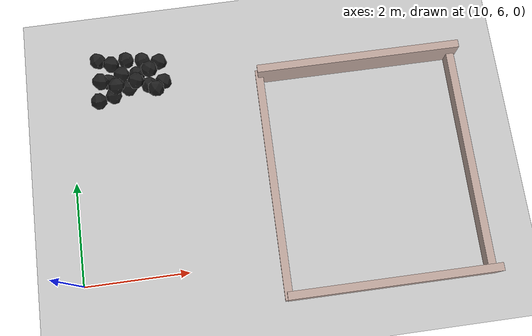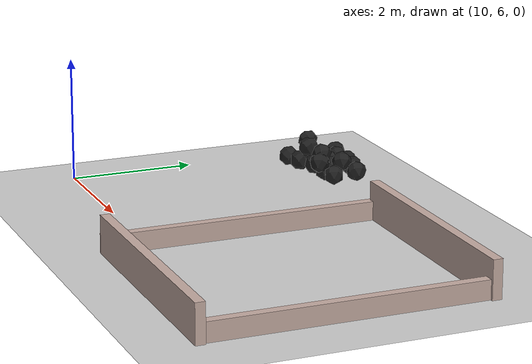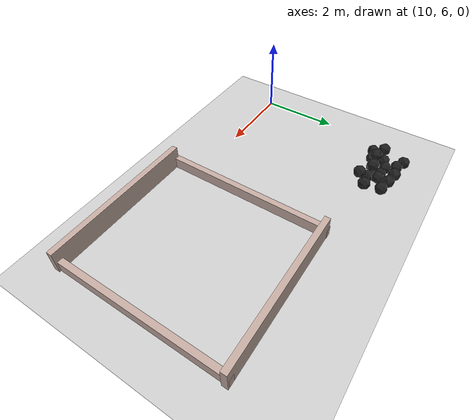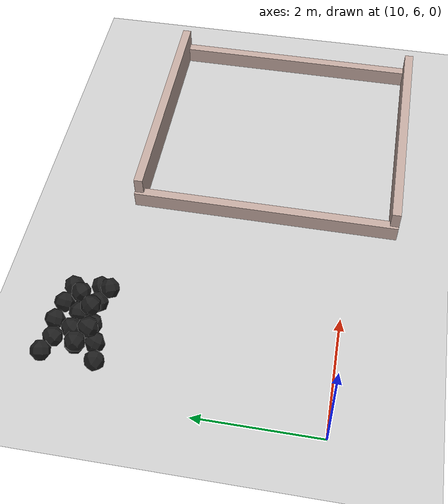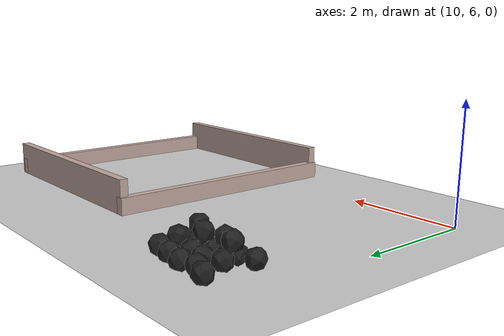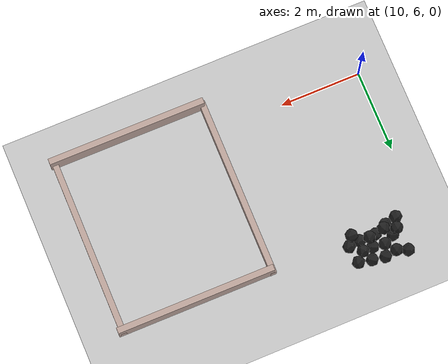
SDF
<sdf version="1.7">
 <world name="default">
  <model name="ground_plane">
   <static>1</static>
   <link name="link">
    <collision name="collision">
     <geometry><plane><normal>0 0 1</normal><size>100 100</size></plane></geometry>
     <surface><friction><ode><mu>100</mu><mu2>50</mu2></ode></friction></surface>
    </collision>
    <visual name="visual">
     <cast_shadows>0</cast_shadows>
     <geometry><plane><normal>0 0 1</normal><size>100 100</size></plane></geometry>
     <material>
      <script><uri>file://media/materials/scripts/gazebo.material</uri><name>Gazebo/Grey</name></script>
     </material>
    </visual>
   </link>
  </model>
  <model name="haoduomiantiaa_18">
   <link name="link_0">
    <inertial>
     <mass>0.2</mass>
     <inertia>
      <ixx>0.166667</ixx>
      <ixy>0</ixy>
      <ixz>0</ixz>
      <iyy>0.166667</iyy>
      <iyz>0</iyz>
      <izz>0.166667</izz>
     </inertia>
    </inertial>
    <visual name="visual">
     <geometry>
      <mesh>
       <uri>/home/lihaoyang/catkin_ws/src/pudong_gazebo/world/stl/haoduomianti.stl</uri>
       <scale>1 1 1</scale>
      </mesh>
     </geometry>
     <material>
      <lighting>1</lighting>
      <script><uri>file://media/materials/scripts/gazebo.material</uri><name>Gazebo/Black</name></script>
      <shader type="pixel"><normal_map>__default__</normal_map></shader>
      <ambient>0.3 0.3 0.3 1</ambient>
      <diffuse>0.7 0.7 0.7 1</diffuse>
      <specular>0.01 0.01 0.01 1</specular>
      <emissive>0 0 0 1</emissive>
     </material>
    </visual>
    <collision name="collision">
     <geometry>
      <mesh>
       <uri>/home/lihaoyang/catkin_ws/src/pudong_gazebo/world/stl/haoduomianti.stl</uri>
       <scale>1 1 1</scale>
      </mesh>
     </geometry>
     <surface>
      <friction>
       <ode><mu>1</mu><mu2>1</mu2><fdir1>0 0 0</fdir1><slip1>0</slip1><slip2>0</slip2></ode>
       <torsional>
        <coefficient>1</coefficient>
        <patch_radius>0</patch_radius>
        <surface_radius>0</surface_radius>
        <use_patch_radius>1</use_patch_radius>
        <ode><slip>0</slip></ode>
       </torsional>
      </friction>
      <bounce><restitution_coefficient>0</restitution_coefficient><threshold>1e+06</threshold></bounce>
      <contact>
       <collide_without_contact>0</collide_without_contact>
       <collide_without_contact_bitmask>1</collide_without_contact_bitmask>
       <collide_bitmask>1</collide_bitmask>
       <ode>
        <soft_cfm>0</soft_cfm>
        <soft_erp>0.2</soft_erp>
        <kp>1e+13</kp>
        <kd>1</kd>
        <max_vel>0.01</max_vel>
        <min_depth>0</min_depth>
       </ode>
       <bullet>
        <split_impulse>1</split_impulse>
        <split_impulse_penetration_threshold>-0.01</split_impulse_penetration_threshold>
        <soft_cfm>0</soft_cfm>
        <soft_erp>0.2</soft_erp>
        <kp>1e+13</kp>
        <kd>1</kd>
       </bullet>
      </contact>
     </surface>
    </collision>
   </link>
   <static>0</static>
   <pose>11.3788 9.80363 0.112676 0.805186 -0.555993 1.0651</pose>
  </model>
  <model name="haoduomiantiaa_20">
   <link name="link_0">
    <inertial>
     <mass>0.2</mass>
     <inertia>
      <ixx>0.166667</ixx>
      <ixy>0</ixy>
      <ixz>0</ixz>
      <iyy>0.166667</iyy>
      <iyz>0</iyz>
      <izz>0.166667</izz>
     </inertia>
    </inertial>
    <visual name="visual">
     <geometry>
      <mesh>
       <uri>/home/lihaoyang/catkin_ws/src/pudong_gazebo/world/stl/haoduomianti.stl</uri>
       <scale>1 1 1</scale>
      </mesh>
     </geometry>
     <material>
      <lighting>1</lighting>
      <script><uri>file://media/materials/scripts/gazebo.material</uri><name>Gazebo/Black</name></script>
      <shader type="pixel"><normal_map>__default__</normal_map></shader>
      <ambient>0.3 0.3 0.3 1</ambient>
      <diffuse>0.7 0.7 0.7 1</diffuse>
      <specular>0.01 0.01 0.01 1</specular>
      <emissive>0 0 0 1</emissive>
     </material>
    </visual>
    <collision name="collision">
     <geometry>
      <mesh>
       <uri>/home/lihaoyang/catkin_ws/src/pudong_gazebo/world/stl/haoduomianti.stl</uri>
       <scale>1 1 1</scale>
      </mesh>
     </geometry>
     <surface>
      <friction>
       <ode><mu>1</mu><mu2>1</mu2><fdir1>0 0 0</fdir1><slip1>0</slip1><slip2>0</slip2></ode>
       <torsional>
        <coefficient>1</coefficient>
        <patch_radius>0</patch_radius>
        <surface_radius>0</surface_radius>
        <use_patch_radius>1</use_patch_radius>
        <ode><slip>0</slip></ode>
       </torsional>
      </friction>
      <bounce><restitution_coefficient>0</restitution_coefficient><threshold>1e+06</threshold></bounce>
      <contact>
       <collide_without_contact>0</collide_without_contact>
       <collide_without_contact_bitmask>1</collide_without_contact_bitmask>
       <collide_bitmask>1</collide_bitmask>
       <ode>
        <soft_cfm>0</soft_cfm>
        <soft_erp>0.2</soft_erp>
        <kp>1e+13</kp>
        <kd>1</kd>
        <max_vel>0.01</max_vel>
        <min_depth>0</min_depth>
       </ode>
       <bullet>
        <split_impulse>1</split_impulse>
        <split_impulse_penetration_threshold>-0.01</split_impulse_penetration_threshold>
        <soft_cfm>0</soft_cfm>
        <soft_erp>0.2</soft_erp>
        <kp>1e+13</kp>
        <kd>1</kd>
       </bullet>
      </contact>
     </surface>
    </collision>
   </link>
   <static>0</static>
   <pose>11.6065 10.0135 0.030702 0.501601 -0.690657 -1.03502</pose>
  </model>
  <model name="haoduomiantiaa_39">
   <link name="link_0">
    <inertial>
     <mass>0.2</mass>
     <inertia>
      <ixx>0.166667</ixx>
      <ixy>0</ixy>
      <ixz>0</ixz>
      <iyy>0.166667</iyy>
      <iyz>0</iyz>
      <izz>0.166667</izz>
     </inertia>
    </inertial>
    <visual name="visual">
     <geometry>
      <mesh>
       <uri>/home/lihaoyang/catkin_ws/src/pudong_gazebo/world/stl/haoduomianti.stl</uri>
       <scale>1 1 1</scale>
      </mesh>
     </geometry>
     <material>
      <lighting>1</lighting>
      <script><uri>file://media/materials/scripts/gazebo.material</uri><name>Gazebo/Black</name></script>
      <shader type="pixel"><normal_map>__default__</normal_map></shader>
      <ambient>0.3 0.3 0.3 1</ambient>
      <diffuse>0.7 0.7 0.7 1</diffuse>
      <specular>0.01 0.01 0.01 1</specular>
      <emissive>0 0 0 1</emissive>
     </material>
    </visual>
    <collision name="collision">
     <geometry>
      <mesh>
       <uri>/home/lihaoyang/catkin_ws/src/pudong_gazebo/world/stl/haoduomianti.stl</uri>
       <scale>1 1 1</scale>
      </mesh>
     </geometry>
     <surface>
      <friction>
       <ode><mu>1</mu><mu2>1</mu2><fdir1>0 0 0</fdir1><slip1>0</slip1><slip2>0</slip2></ode>
       <torsional>
        <coefficient>1</coefficient>
        <patch_radius>0</patch_radius>
        <surface_radius>0</surface_radius>
        <use_patch_radius>1</use_patch_radius>
        <ode><slip>0</slip></ode>
       </torsional>
      </friction>
      <bounce><restitution_coefficient>0</restitution_coefficient><threshold>1e+06</threshold></bounce>
      <contact>
       <collide_without_contact>0</collide_without_contact>
       <collide_without_contact_bitmask>1</collide_without_contact_bitmask>
       <collide_bitmask>1</collide_bitmask>
       <ode>
        <soft_cfm>0</soft_cfm>
        <soft_erp>0.2</soft_erp>
        <kp>1e+13</kp>
        <kd>1</kd>
        <max_vel>0.01</max_vel>
        <min_depth>0</min_depth>
       </ode>
       <bullet>
        <split_impulse>1</split_impulse>
        <split_impulse_penetration_threshold>-0.01</split_impulse_penetration_threshold>
        <soft_cfm>0</soft_cfm>
        <soft_erp>0.2</soft_erp>
        <kp>1e+13</kp>
        <kd>1</kd>
       </bullet>
      </contact>
     </surface>
    </collision>
   </link>
   <static>0</static>
   <pose>11.082 10.0686 -0.115051 0.78511 -0.615438 -0.929755</pose>
  </model>
  <model name="haoduomiantiaa_40">
   <link name="link_0">
    <inertial>
     <mass>0.2</mass>
     <inertia>
      <ixx>0.166667</ixx>
      <ixy>0</ixy>
      <ixz>0</ixz>
      <iyy>0.166667</iyy>
      <iyz>0</iyz>
      <izz>0.166667</izz>
     </inertia>
    </inertial>
    <visual name="visual">
     <geometry>
      <mesh>
       <uri>/home/lihaoyang/catkin_ws/src/pudong_gazebo/world/stl/haoduomianti.stl</uri>
       <scale>1 1 1</scale>
      </mesh>
     </geometry>
     <material>
      <lighting>1</lighting>
      <script><uri>file://media/materials/scripts/gazebo.material</uri><name>Gazebo/Black</name></script>
      <shader type="pixel"><normal_map>__default__</normal_map></shader>
      <ambient>0.3 0.3 0.3 1</ambient>
      <diffuse>0.7 0.7 0.7 1</diffuse>
      <specular>0.01 0.01 0.01 1</specular>
      <emissive>0 0 0 1</emissive>
     </material>
    </visual>
    <collision name="collision">
     <geometry>
      <mesh>
       <uri>/home/lihaoyang/catkin_ws/src/pudong_gazebo/world/stl/haoduomianti.stl</uri>
       <scale>1 1 1</scale>
      </mesh>
     </geometry>
     <surface>
      <friction>
       <ode><mu>1</mu><mu2>1</mu2><fdir1>0 0 0</fdir1><slip1>0</slip1><slip2>0</slip2></ode>
       <torsional>
        <coefficient>1</coefficient>
        <patch_radius>0</patch_radius>
        <surface_radius>0</surface_radius>
        <use_patch_radius>1</use_patch_radius>
        <ode><slip>0</slip></ode>
       </torsional>
      </friction>
      <bounce><restitution_coefficient>0</restitution_coefficient><threshold>1e+06</threshold></bounce>
      <contact>
       <collide_without_contact>0</collide_without_contact>
       <collide_without_contact_bitmask>1</collide_without_contact_bitmask>
       <collide_bitmask>1</collide_bitmask>
       <ode>
        <soft_cfm>0</soft_cfm>
        <soft_erp>0.2</soft_erp>
        <kp>1e+13</kp>
        <kd>1</kd>
        <max_vel>0.01</max_vel>
        <min_depth>0</min_depth>
       </ode>
       <bullet>
        <split_impulse>1</split_impulse>
        <split_impulse_penetration_threshold>-0.01</split_impulse_penetration_threshold>
        <soft_cfm>0</soft_cfm>
        <soft_erp>0.2</soft_erp>
        <kp>1e+13</kp>
        <kd>1</kd>
       </bullet>
      </contact>
     </surface>
    </collision>
   </link>
   <static>0</static>
   <pose>10.706 9.57484 -0.086191 0.235621 -0.771421 1.46345</pose>
  </model>
  <model name="haoduomiantiaa_43">
   <link name="link_0">
    <inertial>
     <mass>0.2</mass>
     <inertia>
      <ixx>0.166667</ixx>
      <ixy>0</ixy>
      <ixz>0</ixz>
      <iyy>0.166667</iyy>
      <iyz>0</iyz>
      <izz>0.166667</izz>
     </inertia>
    </inertial>
    <visual name="visual">
     <geometry>
      <mesh>
       <uri>/home/lihaoyang/catkin_ws/src/pudong_gazebo/world/stl/haoduomianti.stl</uri>
       <scale>1 1 1</scale>
      </mesh>
     </geometry>
     <material>
      <lighting>1</lighting>
      <script><uri>file://media/materials/scripts/gazebo.material</uri><name>Gazebo/Black</name></script>
      <shader type="pixel"><normal_map>__default__</normal_map></shader>
      <ambient>0.3 0.3 0.3 1</ambient>
      <diffuse>0.7 0.7 0.7 1</diffuse>
      <specular>0.01 0.01 0.01 1</specular>
      <emissive>0 0 0 1</emissive>
     </material>
    </visual>
    <collision name="collision">
     <geometry>
      <mesh>
       <uri>/home/lihaoyang/catkin_ws/src/pudong_gazebo/world/stl/haoduomianti.stl</uri>
       <scale>1 1 1</scale>
      </mesh>
     </geometry>
     <surface>
      <friction>
       <ode><mu>1</mu><mu2>1</mu2><fdir1>0 0 0</fdir1><slip1>0</slip1><slip2>0</slip2></ode>
       <torsional>
        <coefficient>1</coefficient>
        <patch_radius>0</patch_radius>
        <surface_radius>0</surface_radius>
        <use_patch_radius>1</use_patch_radius>
        <ode><slip>0</slip></ode>
       </torsional>
      </friction>
      <bounce><restitution_coefficient>0</restitution_coefficient><threshold>1e+06</threshold></bounce>
      <contact>
       <collide_without_contact>0</collide_without_contact>
       <collide_without_contact_bitmask>1</collide_without_contact_bitmask>
       <collide_bitmask>1</collide_bitmask>
       <ode>
        <soft_cfm>0</soft_cfm>
        <soft_erp>0.2</soft_erp>
        <kp>1e+13</kp>
        <kd>1</kd>
        <max_vel>0.01</max_vel>
        <min_depth>0</min_depth>
       </ode>
       <bullet>
        <split_impulse>1</split_impulse>
        <split_impulse_penetration_threshold>-0.01</split_impulse_penetration_threshold>
        <soft_cfm>0</soft_cfm>
        <soft_erp>0.2</soft_erp>
        <kp>1e+13</kp>
        <kd>1</kd>
       </bullet>
      </contact>
     </surface>
    </collision>
   </link>
   <static>0</static>
   <pose>10.6282 10.415 -0.115491 0.785379 -0.615443 -1.95825</pose>
  </model>
  <model name="haoduomiantiaa_45">
   <link name="link_0">
    <inertial>
     <mass>0.2</mass>
     <inertia>
      <ixx>0.166667</ixx>
      <ixy>0</ixy>
      <ixz>0</ixz>
      <iyy>0.166667</iyy>
      <iyz>0</iyz>
      <izz>0.166667</izz>
     </inertia>
    </inertial>
    <visual name="visual">
     <geometry>
      <mesh>
       <uri>/home/lihaoyang/catkin_ws/src/pudong_gazebo/world/stl/haoduomianti.stl</uri>
       <scale>1 1 1</scale>
      </mesh>
     </geometry>
     <material>
      <lighting>1</lighting>
      <script><uri>file://media/materials/scripts/gazebo.material</uri><name>Gazebo/Black</name></script>
      <shader type="pixel"><normal_map>__default__</normal_map></shader>
      <ambient>0.3 0.3 0.3 1</ambient>
      <diffuse>0.7 0.7 0.7 1</diffuse>
      <specular>0.01 0.01 0.01 1</specular>
      <emissive>0 0 0 1</emissive>
     </material>
    </visual>
    <collision name="collision">
     <geometry>
      <mesh>
       <uri>/home/lihaoyang/catkin_ws/src/pudong_gazebo/world/stl/haoduomianti.stl</uri>
       <scale>1 1 1</scale>
      </mesh>
     </geometry>
     <surface>
      <friction>
       <ode><mu>1</mu><mu2>1</mu2><fdir1>0 0 0</fdir1><slip1>0</slip1><slip2>0</slip2></ode>
       <torsional>
        <coefficient>1</coefficient>
        <patch_radius>0</patch_radius>
        <surface_radius>0</surface_radius>
        <use_patch_radius>1</use_patch_radius>
        <ode><slip>0</slip></ode>
       </torsional>
      </friction>
      <bounce><restitution_coefficient>0</restitution_coefficient><threshold>1e+06</threshold></bounce>
      <contact>
       <collide_without_contact>0</collide_without_contact>
       <collide_without_contact_bitmask>1</collide_without_contact_bitmask>
       <collide_bitmask>1</collide_bitmask>
       <ode>
        <soft_cfm>0</soft_cfm>
        <soft_erp>0.2</soft_erp>
        <kp>1e+13</kp>
        <kd>1</kd>
        <max_vel>0.01</max_vel>
        <min_depth>0</min_depth>
       </ode>
       <bullet>
        <split_impulse>1</split_impulse>
        <split_impulse_penetration_threshold>-0.01</split_impulse_penetration_threshold>
        <soft_cfm>0</soft_cfm>
        <soft_erp>0.2</soft_erp>
        <kp>1e+13</kp>
        <kd>1</kd>
       </bullet>
      </contact>
     </surface>
    </collision>
   </link>
   <static>0</static>
   <pose>10.8929 9.64244 -0.115492 0.785406 -0.615423 1.58858</pose>
  </model>
  <model name="haoduomiantiaa_54">
   <link name="link_0">
    <inertial>
     <mass>0.2</mass>
     <inertia>
      <ixx>0.166667</ixx>
      <ixy>0</ixy>
      <ixz>0</ixz>
      <iyy>0.166667</iyy>
      <iyz>0</iyz>
      <izz>0.166667</izz>
     </inertia>
    </inertial>
    <visual name="visual">
     <geometry>
      <mesh>
       <uri>/home/lihaoyang/catkin_ws/src/pudong_gazebo/world/stl/haoduomianti.stl</uri>
       <scale>1 1 1</scale>
      </mesh>
     </geometry>
     <material>
      <lighting>1</lighting>
      <script><uri>file://media/materials/scripts/gazebo.material</uri><name>Gazebo/Black</name></script>
      <shader type="pixel"><normal_map>__default__</normal_map></shader>
      <ambient>0.3 0.3 0.3 1</ambient>
      <diffuse>0.7 0.7 0.7 1</diffuse>
      <specular>0.01 0.01 0.01 1</specular>
      <emissive>0 0 0 1</emissive>
     </material>
    </visual>
    <collision name="collision">
     <geometry>
      <mesh>
       <uri>/home/lihaoyang/catkin_ws/src/pudong_gazebo/world/stl/haoduomianti.stl</uri>
       <scale>1 1 1</scale>
      </mesh>
     </geometry>
     <surface>
      <friction>
       <ode><mu>1</mu><mu2>1</mu2><fdir1>0 0 0</fdir1><slip1>0</slip1><slip2>0</slip2></ode>
       <torsional>
        <coefficient>1</coefficient>
        <patch_radius>0</patch_radius>
        <surface_radius>0</surface_radius>
        <use_patch_radius>1</use_patch_radius>
        <ode><slip>0</slip></ode>
       </torsional>
      </friction>
      <bounce><restitution_coefficient>0</restitution_coefficient><threshold>1e+06</threshold></bounce>
      <contact>
       <collide_without_contact>0</collide_without_contact>
       <collide_without_contact_bitmask>1</collide_without_contact_bitmask>
       <collide_bitmask>1</collide_bitmask>
       <ode>
        <soft_cfm>0</soft_cfm>
        <soft_erp>0.2</soft_erp>
        <kp>1e+13</kp>
        <kd>1</kd>
        <max_vel>0.01</max_vel>
        <min_depth>0</min_depth>
       </ode>
       <bullet>
        <split_impulse>1</split_impulse>
        <split_impulse_penetration_threshold>-0.01</split_impulse_penetration_threshold>
        <soft_cfm>0</soft_cfm>
        <soft_erp>0.2</soft_erp>
        <kp>1e+13</kp>
        <kd>1</kd>
       </bullet>
      </contact>
     </surface>
    </collision>
   </link>
   <static>0</static>
   <pose>11.7536 9.62556 0.079501 0.76513 -0.667328 2.52944</pose>
  </model>
  <model name="haoduomiantiaa_64">
   <link name="link_0">
    <inertial>
     <mass>0.2</mass>
     <inertia>
      <ixx>0.166667</ixx>
      <ixy>0</ixy>
      <ixz>0</ixz>
      <iyy>0.166667</iyy>
      <iyz>0</iyz>
      <izz>0.166667</izz>
     </inertia>
    </inertial>
    <visual name="visual">
     <geometry>
      <mesh>
       <uri>/home/lihaoyang/catkin_ws/src/pudong_gazebo/world/stl/haoduomianti.stl</uri>
       <scale>1 1 1</scale>
      </mesh>
     </geometry>
     <material>
      <lighting>1</lighting>
      <script><uri>file://media/materials/scripts/gazebo.material</uri><name>Gazebo/Black</name></script>
      <shader type="pixel"><normal_map>__default__</normal_map></shader>
      <ambient>0.3 0.3 0.3 1</ambient>
      <diffuse>0.7 0.7 0.7 1</diffuse>
      <specular>0.01 0.01 0.01 1</specular>
      <emissive>0 0 0 1</emissive>
     </material>
    </visual>
    <collision name="collision">
     <geometry>
      <mesh>
       <uri>/home/lihaoyang/catkin_ws/src/pudong_gazebo/world/stl/haoduomianti.stl</uri>
       <scale>1 1 1</scale>
      </mesh>
     </geometry>
     <surface>
      <friction>
       <ode><mu>1</mu><mu2>1</mu2><fdir1>0 0 0</fdir1><slip1>0</slip1><slip2>0</slip2></ode>
       <torsional>
        <coefficient>1</coefficient>
        <patch_radius>0</patch_radius>
        <surface_radius>0</surface_radius>
        <use_patch_radius>1</use_patch_radius>
        <ode><slip>0</slip></ode>
       </torsional>
      </friction>
      <bounce><restitution_coefficient>0</restitution_coefficient><threshold>1e+06</threshold></bounce>
      <contact>
       <collide_without_contact>0</collide_without_contact>
       <collide_without_contact_bitmask>1</collide_without_contact_bitmask>
       <collide_bitmask>1</collide_bitmask>
       <ode>
        <soft_cfm>0</soft_cfm>
        <soft_erp>0.2</soft_erp>
        <kp>1e+13</kp>
        <kd>1</kd>
        <max_vel>0.01</max_vel>
        <min_depth>0</min_depth>
       </ode>
       <bullet>
        <split_impulse>1</split_impulse>
        <split_impulse_penetration_threshold>-0.01</split_impulse_penetration_threshold>
        <soft_cfm>0</soft_cfm>
        <soft_erp>0.2</soft_erp>
        <kp>1e+13</kp>
        <kd>1</kd>
       </bullet>
      </contact>
     </surface>
    </collision>
   </link>
   <static>0</static>
   <pose>11.0096 9.73055 0.127316 0.735137 -0.678383 -0.581348</pose>
  </model>
  <model name="haoduomiantiaa_76">
   <link name="link_0">
    <inertial>
     <mass>0.2</mass>
     <inertia>
      <ixx>0.166667</ixx>
      <ixy>0</ixy>
      <ixz>0</ixz>
      <iyy>0.166667</iyy>
      <iyz>0</iyz>
      <izz>0.166667</izz>
     </inertia>
    </inertial>
    <visual name="visual">
     <geometry>
      <mesh>
       <uri>/home/lihaoyang/catkin_ws/src/pudong_gazebo/world/stl/haoduomianti.stl</uri>
       <scale>1 1 1</scale>
      </mesh>
     </geometry>
     <material>
      <lighting>1</lighting>
      <script><uri>file://media/materials/scripts/gazebo.material</uri><name>Gazebo/Black</name></script>
      <shader type="pixel"><normal_map>__default__</normal_map></shader>
      <ambient>0.3 0.3 0.3 1</ambient>
      <diffuse>0.7 0.7 0.7 1</diffuse>
      <specular>0.01 0.01 0.01 1</specular>
      <emissive>0 0 0 1</emissive>
     </material>
    </visual>
    <collision name="collision">
     <geometry>
      <mesh>
       <uri>/home/lihaoyang/catkin_ws/src/pudong_gazebo/world/stl/haoduomianti.stl</uri>
       <scale>1 1 1</scale>
      </mesh>
     </geometry>
     <surface>
      <friction>
       <ode><mu>1</mu><mu2>1</mu2><fdir1>0 0 0</fdir1><slip1>0</slip1><slip2>0</slip2></ode>
       <torsional>
        <coefficient>1</coefficient>
        <patch_radius>0</patch_radius>
        <surface_radius>0</surface_radius>
        <use_patch_radius>1</use_patch_radius>
        <ode><slip>0</slip></ode>
       </torsional>
      </friction>
      <bounce><restitution_coefficient>0</restitution_coefficient><threshold>1e+06</threshold></bounce>
      <contact>
       <collide_without_contact>0</collide_without_contact>
       <collide_without_contact_bitmask>1</collide_without_contact_bitmask>
       <collide_bitmask>1</collide_bitmask>
       <ode>
        <soft_cfm>0</soft_cfm>
        <soft_erp>0.2</soft_erp>
        <kp>1e+13</kp>
        <kd>1</kd>
        <max_vel>0.01</max_vel>
        <min_depth>0</min_depth>
       </ode>
       <bullet>
        <split_impulse>1</split_impulse>
        <split_impulse_penetration_threshold>-0.01</split_impulse_penetration_threshold>
        <soft_cfm>0</soft_cfm>
        <soft_erp>0.2</soft_erp>
        <kp>1e+13</kp>
        <kd>1</kd>
       </bullet>
      </contact>
     </surface>
    </collision>
   </link>
   <static>0</static>
   <pose>11.8326 10.2373 -0.115151 0.763899 -0.625403 -1.18867</pose>
  </model>
  <model name="haoduomiantiaa_80">
   <link name="link_0">
    <inertial>
     <mass>0.2</mass>
     <inertia>
      <ixx>0.166667</ixx>
      <ixy>0</ixy>
      <ixz>0</ixz>
      <iyy>0.166667</iyy>
      <iyz>0</iyz>
      <izz>0.166667</izz>
     </inertia>
    </inertial>
    <visual name="visual">
     <geometry>
      <mesh>
       <uri>/home/lihaoyang/catkin_ws/src/pudong_gazebo/world/stl/haoduomianti.stl</uri>
       <scale>1 1 1</scale>
      </mesh>
     </geometry>
     <material>
      <lighting>1</lighting>
      <script><uri>file://media/materials/scripts/gazebo.material</uri><name>Gazebo/Black</name></script>
      <shader type="pixel"><normal_map>__default__</normal_map></shader>
      <ambient>0.3 0.3 0.3 1</ambient>
      <diffuse>0.7 0.7 0.7 1</diffuse>
      <specular>0.01 0.01 0.01 1</specular>
      <emissive>0 0 0 1</emissive>
     </material>
    </visual>
    <collision name="collision">
     <geometry>
      <mesh>
       <uri>/home/lihaoyang/catkin_ws/src/pudong_gazebo/world/stl/haoduomianti.stl</uri>
       <scale>1 1 1</scale>
      </mesh>
     </geometry>
     <surface>
      <friction>
       <ode><mu>1</mu><mu2>1</mu2><fdir1>0 0 0</fdir1><slip1>0</slip1><slip2>0</slip2></ode>
       <torsional>
        <coefficient>1</coefficient>
        <patch_radius>0</patch_radius>
        <surface_radius>0</surface_radius>
        <use_patch_radius>1</use_patch_radius>
        <ode><slip>0</slip></ode>
       </torsional>
      </friction>
      <bounce><restitution_coefficient>0</restitution_coefficient><threshold>1e+06</threshold></bounce>
      <contact>
       <collide_without_contact>0</collide_without_contact>
       <collide_without_contact_bitmask>1</collide_without_contact_bitmask>
       <collide_bitmask>1</collide_bitmask>
       <ode>
        <soft_cfm>0</soft_cfm>
        <soft_erp>0.2</soft_erp>
        <kp>1e+13</kp>
        <kd>1</kd>
        <max_vel>0.01</max_vel>
        <min_depth>0</min_depth>
       </ode>
       <bullet>
        <split_impulse>1</split_impulse>
        <split_impulse_penetration_threshold>-0.01</split_impulse_penetration_threshold>
        <soft_cfm>0</soft_cfm>
        <soft_erp>0.2</soft_erp>
        <kp>1e+13</kp>
        <kd>1</kd>
       </bullet>
      </contact>
     </surface>
    </collision>
   </link>
   <static>0</static>
   <pose>11.2004 9.75401 -0.113503 0.785505 -0.551101 1.41518</pose>
  </model>
  <model name="haoduomiantiaa_82">
   <link name="link_0">
    <inertial>
     <mass>0.2</mass>
     <inertia>
      <ixx>0.166667</ixx>
      <ixy>0</ixy>
      <ixz>0</ixz>
      <iyy>0.166667</iyy>
      <iyz>0</iyz>
      <izz>0.166667</izz>
     </inertia>
    </inertial>
    <visual name="visual">
     <geometry>
      <mesh>
       <uri>/home/lihaoyang/catkin_ws/src/pudong_gazebo/world/stl/haoduomianti.stl</uri>
       <scale>1 1 1</scale>
      </mesh>
     </geometry>
     <material>
      <lighting>1</lighting>
      <script><uri>file://media/materials/scripts/gazebo.material</uri><name>Gazebo/Black</name></script>
      <shader type="pixel"><normal_map>__default__</normal_map></shader>
      <ambient>0.3 0.3 0.3 1</ambient>
      <diffuse>0.7 0.7 0.7 1</diffuse>
      <specular>0.01 0.01 0.01 1</specular>
      <emissive>0 0 0 1</emissive>
     </material>
    </visual>
    <collision name="collision">
     <geometry>
      <mesh>
       <uri>/home/lihaoyang/catkin_ws/src/pudong_gazebo/world/stl/haoduomianti.stl</uri>
       <scale>1 1 1</scale>
      </mesh>
     </geometry>
     <surface>
      <friction>
       <ode><mu>1</mu><mu2>1</mu2><fdir1>0 0 0</fdir1><slip1>0</slip1><slip2>0</slip2></ode>
       <torsional>
        <coefficient>1</coefficient>
        <patch_radius>0</patch_radius>
        <surface_radius>0</surface_radius>
        <use_patch_radius>1</use_patch_radius>
        <ode><slip>0</slip></ode>
       </torsional>
      </friction>
      <bounce><restitution_coefficient>0</restitution_coefficient><threshold>1e+06</threshold></bounce>
      <contact>
       <collide_without_contact>0</collide_without_contact>
       <collide_without_contact_bitmask>1</collide_without_contact_bitmask>
       <collide_bitmask>1</collide_bitmask>
       <ode>
        <soft_cfm>0</soft_cfm>
        <soft_erp>0.2</soft_erp>
        <kp>1e+13</kp>
        <kd>1</kd>
        <max_vel>0.01</max_vel>
        <min_depth>0</min_depth>
       </ode>
       <bullet>
        <split_impulse>1</split_impulse>
        <split_impulse_penetration_threshold>-0.01</split_impulse_penetration_threshold>
        <soft_cfm>0</soft_cfm>
        <soft_erp>0.2</soft_erp>
        <kp>1e+13</kp>
        <kd>1</kd>
       </bullet>
      </contact>
     </surface>
    </collision>
   </link>
   <static>0</static>
   <pose>10.7646 9.86983 0.166052 0.57744 -0.693984 1.3104</pose>
  </model>
  <model name="haoduomiantiaa_88">
   <link name="link_0">
    <inertial>
     <mass>0.2</mass>
     <inertia>
      <ixx>0.166667</ixx>
      <ixy>0</ixy>
      <ixz>0</ixz>
      <iyy>0.166667</iyy>
      <iyz>0</iyz>
      <izz>0.166667</izz>
     </inertia>
    </inertial>
    <visual name="visual">
     <geometry>
      <mesh>
       <uri>/home/lihaoyang/catkin_ws/src/pudong_gazebo/world/stl/haoduomianti.stl</uri>
       <scale>1 1 1</scale>
      </mesh>
     </geometry>
     <material>
      <lighting>1</lighting>
      <script><uri>file://media/materials/scripts/gazebo.material</uri><name>Gazebo/Black</name></script>
      <shader type="pixel"><normal_map>__default__</normal_map></shader>
      <ambient>0.3 0.3 0.3 1</ambient>
      <diffuse>0.7 0.7 0.7 1</diffuse>
      <specular>0.01 0.01 0.01 1</specular>
      <emissive>0 0 0 1</emissive>
     </material>
    </visual>
    <collision name="collision">
     <geometry>
      <mesh>
       <uri>/home/lihaoyang/catkin_ws/src/pudong_gazebo/world/stl/haoduomianti.stl</uri>
       <scale>1 1 1</scale>
      </mesh>
     </geometry>
     <surface>
      <friction>
       <ode><mu>1</mu><mu2>1</mu2><fdir1>0 0 0</fdir1><slip1>0</slip1><slip2>0</slip2></ode>
       <torsional>
        <coefficient>1</coefficient>
        <patch_radius>0</patch_radius>
        <surface_radius>0</surface_radius>
        <use_patch_radius>1</use_patch_radius>
        <ode><slip>0</slip></ode>
       </torsional>
      </friction>
      <bounce><restitution_coefficient>0</restitution_coefficient><threshold>1e+06</threshold></bounce>
      <contact>
       <collide_without_contact>0</collide_without_contact>
       <collide_without_contact_bitmask>1</collide_without_contact_bitmask>
       <collide_bitmask>1</collide_bitmask>
       <ode>
        <soft_cfm>0</soft_cfm>
        <soft_erp>0.2</soft_erp>
        <kp>1e+13</kp>
        <kd>1</kd>
        <max_vel>0.01</max_vel>
        <min_depth>0</min_depth>
       </ode>
       <bullet>
        <split_impulse>1</split_impulse>
        <split_impulse_penetration_threshold>-0.01</split_impulse_penetration_threshold>
        <soft_cfm>0</soft_cfm>
        <soft_erp>0.2</soft_erp>
        <kp>1e+13</kp>
        <kd>1</kd>
       </bullet>
      </contact>
     </surface>
    </collision>
   </link>
   <static>0</static>
   <pose>10.8899 10.3077 -0.115264 0.785357 -0.615582 -3.00543</pose>
  </model>
  <model name="haoduomiantiaa_89">
   <link name="link_0">
    <inertial>
     <mass>0.2</mass>
     <inertia>
      <ixx>0.166667</ixx>
      <ixy>0</ixy>
      <ixz>0</ixz>
      <iyy>0.166667</iyy>
      <iyz>0</iyz>
      <izz>0.166667</izz>
     </inertia>
    </inertial>
    <visual name="visual">
     <geometry>
      <mesh>
       <uri>/home/lihaoyang/catkin_ws/src/pudong_gazebo/world/stl/haoduomianti.stl</uri>
       <scale>1 1 1</scale>
      </mesh>
     </geometry>
     <material>
      <lighting>1</lighting>
      <script><uri>file://media/materials/scripts/gazebo.material</uri><name>Gazebo/Black</name></script>
      <shader type="pixel"><normal_map>__default__</normal_map></shader>
      <ambient>0.3 0.3 0.3 1</ambient>
      <diffuse>0.7 0.7 0.7 1</diffuse>
      <specular>0.01 0.01 0.01 1</specular>
      <emissive>0 0 0 1</emissive>
     </material>
    </visual>
    <collision name="collision">
     <geometry>
      <mesh>
       <uri>/home/lihaoyang/catkin_ws/src/pudong_gazebo/world/stl/haoduomianti.stl</uri>
       <scale>1 1 1</scale>
      </mesh>
     </geometry>
     <surface>
      <friction>
       <ode><mu>1</mu><mu2>1</mu2><fdir1>0 0 0</fdir1><slip1>0</slip1><slip2>0</slip2></ode>
       <torsional>
        <coefficient>1</coefficient>
        <patch_radius>0</patch_radius>
        <surface_radius>0</surface_radius>
        <use_patch_radius>1</use_patch_radius>
        <ode><slip>0</slip></ode>
       </torsional>
      </friction>
      <bounce><restitution_coefficient>0</restitution_coefficient><threshold>1e+06</threshold></bounce>
      <contact>
       <collide_without_contact>0</collide_without_contact>
       <collide_without_contact_bitmask>1</collide_without_contact_bitmask>
       <collide_bitmask>1</collide_bitmask>
       <ode>
        <soft_cfm>0</soft_cfm>
        <soft_erp>0.2</soft_erp>
        <kp>1e+13</kp>
        <kd>1</kd>
        <max_vel>0.01</max_vel>
        <min_depth>0</min_depth>
       </ode>
       <bullet>
        <split_impulse>1</split_impulse>
        <split_impulse_penetration_threshold>-0.01</split_impulse_penetration_threshold>
        <soft_cfm>0</soft_cfm>
        <soft_erp>0.2</soft_erp>
        <kp>1e+13</kp>
        <kd>1</kd>
       </bullet>
      </contact>
     </surface>
    </collision>
   </link>
   <static>0</static>
   <pose>11.5131 10.3068 -0.115469 0.785379 -0.615487 -0.170698</pose>
  </model>
  <model name="haoduomiantiaa_96">
   <link name="link_0">
    <inertial>
     <mass>0.2</mass>
     <inertia>
      <ixx>0.166667</ixx>
      <ixy>0</ixy>
      <ixz>0</ixz>
      <iyy>0.166667</iyy>
      <iyz>0</iyz>
      <izz>0.166667</izz>
     </inertia>
    </inertial>
    <visual name="visual">
     <geometry>
      <mesh>
       <uri>/home/lihaoyang/catkin_ws/src/pudong_gazebo/world/stl/haoduomianti.stl</uri>
       <scale>1 1 1</scale>
      </mesh>
     </geometry>
     <material>
      <lighting>1</lighting>
      <script><uri>file://media/materials/scripts/gazebo.material</uri><name>Gazebo/Black</name></script>
      <shader type="pixel"><normal_map>__default__</normal_map></shader>
      <ambient>0.3 0.3 0.3 1</ambient>
      <diffuse>0.7 0.7 0.7 1</diffuse>
      <specular>0.01 0.01 0.01 1</specular>
      <emissive>0 0 0 1</emissive>
     </material>
    </visual>
    <collision name="collision">
     <geometry>
      <mesh>
       <uri>/home/lihaoyang/catkin_ws/src/pudong_gazebo/world/stl/haoduomianti.stl</uri>
       <scale>1 1 1</scale>
      </mesh>
     </geometry>
     <surface>
      <friction>
       <ode><mu>1</mu><mu2>1</mu2><fdir1>0 0 0</fdir1><slip1>0</slip1><slip2>0</slip2></ode>
       <torsional>
        <coefficient>1</coefficient>
        <patch_radius>0</patch_radius>
        <surface_radius>0</surface_radius>
        <use_patch_radius>1</use_patch_radius>
        <ode><slip>0</slip></ode>
       </torsional>
      </friction>
      <bounce><restitution_coefficient>0</restitution_coefficient><threshold>1e+06</threshold></bounce>
      <contact>
       <collide_without_contact>0</collide_without_contact>
       <collide_without_contact_bitmask>1</collide_without_contact_bitmask>
       <collide_bitmask>1</collide_bitmask>
       <ode>
        <soft_cfm>0</soft_cfm>
        <soft_erp>0.2</soft_erp>
        <kp>1e+13</kp>
        <kd>1</kd>
        <max_vel>0.01</max_vel>
        <min_depth>0</min_depth>
       </ode>
       <bullet>
        <split_impulse>1</split_impulse>
        <split_impulse_penetration_threshold>-0.01</split_impulse_penetration_threshold>
        <soft_cfm>0</soft_cfm>
        <soft_erp>0.2</soft_erp>
        <kp>1e+13</kp>
        <kd>1</kd>
       </bullet>
      </contact>
     </surface>
    </collision>
   </link>
   <static>0</static>
   <pose>11.3829 10.0305 -0.115492 0.785408 -0.615439 -0.00453</pose>
  </model>
  <model name="haoduomiantiaa_111">
   <link name="link_0">
    <inertial>
     <mass>0.2</mass>
     <inertia>
      <ixx>0.166667</ixx>
      <ixy>0</ixy>
      <ixz>0</ixz>
      <iyy>0.166667</iyy>
      <iyz>0</iyz>
      <izz>0.166667</izz>
     </inertia>
    </inertial>
    <visual name="visual">
     <geometry>
      <mesh>
       <uri>/home/lihaoyang/catkin_ws/src/pudong_gazebo/world/stl/haoduomianti.stl</uri>
       <scale>1 1 1</scale>
      </mesh>
     </geometry>
     <material>
      <lighting>1</lighting>
      <script><uri>file://media/materials/scripts/gazebo.material</uri><name>Gazebo/Black</name></script>
      <shader type="pixel"><normal_map>__default__</normal_map></shader>
      <ambient>0.3 0.3 0.3 1</ambient>
      <diffuse>0.7 0.7 0.7 1</diffuse>
      <specular>0.01 0.01 0.01 1</specular>
      <emissive>0 0 0 1</emissive>
     </material>
    </visual>
    <collision name="collision">
     <geometry>
      <mesh>
       <uri>/home/lihaoyang/catkin_ws/src/pudong_gazebo/world/stl/haoduomianti.stl</uri>
       <scale>1 1 1</scale>
      </mesh>
     </geometry>
     <surface>
      <friction>
       <ode><mu>1</mu><mu2>1</mu2><fdir1>0 0 0</fdir1><slip1>0</slip1><slip2>0</slip2></ode>
       <torsional>
        <coefficient>1</coefficient>
        <patch_radius>0</patch_radius>
        <surface_radius>0</surface_radius>
        <use_patch_radius>1</use_patch_radius>
        <ode><slip>0</slip></ode>
       </torsional>
      </friction>
      <bounce><restitution_coefficient>0</restitution_coefficient><threshold>1e+06</threshold></bounce>
      <contact>
       <collide_without_contact>0</collide_without_contact>
       <collide_without_contact_bitmask>1</collide_without_contact_bitmask>
       <collide_bitmask>1</collide_bitmask>
       <ode>
        <soft_cfm>0</soft_cfm>
        <soft_erp>0.2</soft_erp>
        <kp>1e+13</kp>
        <kd>1</kd>
        <max_vel>0.01</max_vel>
        <min_depth>0</min_depth>
       </ode>
       <bullet>
        <split_impulse>1</split_impulse>
        <split_impulse_penetration_threshold>-0.01</split_impulse_penetration_threshold>
        <soft_cfm>0</soft_cfm>
        <soft_erp>0.2</soft_erp>
        <kp>1e+13</kp>
        <kd>1</kd>
       </bullet>
      </contact>
     </surface>
    </collision>
   </link>
   <static>0</static>
   <pose>11.8926 9.81434 -0.115526 0.785388 -0.61548 2.73715</pose>
  </model>
  <model name="haoduomiantiaa_118">
   <link name="link_0">
    <inertial>
     <mass>0.2</mass>
     <inertia>
      <ixx>0.166667</ixx>
      <ixy>0</ixy>
      <ixz>0</ixz>
      <iyy>0.166667</iyy>
      <iyz>0</iyz>
      <izz>0.166667</izz>
     </inertia>
    </inertial>
    <visual name="visual">
     <geometry>
      <mesh>
       <uri>/home/lihaoyang/catkin_ws/src/pudong_gazebo/world/stl/haoduomianti.stl</uri>
       <scale>1 1 1</scale>
      </mesh>
     </geometry>
     <material>
      <lighting>1</lighting>
      <script><uri>file://media/materials/scripts/gazebo.material</uri><name>Gazebo/Black</name></script>
      <shader type="pixel"><normal_map>__default__</normal_map></shader>
      <ambient>0.3 0.3 0.3 1</ambient>
      <diffuse>0.7 0.7 0.7 1</diffuse>
      <specular>0.01 0.01 0.01 1</specular>
      <emissive>0 0 0 1</emissive>
     </material>
    </visual>
    <collision name="collision">
     <geometry>
      <mesh>
       <uri>/home/lihaoyang/catkin_ws/src/pudong_gazebo/world/stl/haoduomianti.stl</uri>
       <scale>1 1 1</scale>
      </mesh>
     </geometry>
     <surface>
      <friction>
       <ode><mu>1</mu><mu2>1</mu2><fdir1>0 0 0</fdir1><slip1>0</slip1><slip2>0</slip2></ode>
       <torsional>
        <coefficient>1</coefficient>
        <patch_radius>0</patch_radius>
        <surface_radius>0</surface_radius>
        <use_patch_radius>1</use_patch_radius>
        <ode><slip>0</slip></ode>
       </torsional>
      </friction>
      <bounce><restitution_coefficient>0</restitution_coefficient><threshold>1e+06</threshold></bounce>
      <contact>
       <collide_without_contact>0</collide_without_contact>
       <collide_without_contact_bitmask>1</collide_without_contact_bitmask>
       <collide_bitmask>1</collide_bitmask>
       <ode>
        <soft_cfm>0</soft_cfm>
        <soft_erp>0.2</soft_erp>
        <kp>1e+13</kp>
        <kd>1</kd>
        <max_vel>0.01</max_vel>
        <min_depth>0</min_depth>
       </ode>
       <bullet>
        <split_impulse>1</split_impulse>
        <split_impulse_penetration_threshold>-0.01</split_impulse_penetration_threshold>
        <soft_cfm>0</soft_cfm>
        <soft_erp>0.2</soft_erp>
        <kp>1e+13</kp>
        <kd>1</kd>
       </bullet>
      </contact>
     </surface>
    </collision>
   </link>
   <static>0</static>
   <pose>10.8259 9.93905 -0.115475 0.785087 -0.615606 2.21142</pose>
  </model>
  <model name="haoduomiantiaa_130">
   <link name="link_0">
    <inertial>
     <mass>0.2</mass>
     <inertia>
      <ixx>0.166667</ixx>
      <ixy>0</ixy>
      <ixz>0</ixz>
      <iyy>0.166667</iyy>
      <iyz>0</iyz>
      <izz>0.166667</izz>
     </inertia>
    </inertial>
    <visual name="visual">
     <geometry>
      <mesh>
       <uri>/home/lihaoyang/catkin_ws/src/pudong_gazebo/world/stl/haoduomianti.stl</uri>
       <scale>1 1 1</scale>
      </mesh>
     </geometry>
     <material>
      <lighting>1</lighting>
      <script><uri>file://media/materials/scripts/gazebo.material</uri><name>Gazebo/Black</name></script>
      <shader type="pixel"><normal_map>__default__</normal_map></shader>
      <ambient>0.3 0.3 0.3 1</ambient>
      <diffuse>0.7 0.7 0.7 1</diffuse>
      <specular>0.01 0.01 0.01 1</specular>
      <emissive>0 0 0 1</emissive>
     </material>
    </visual>
    <collision name="collision">
     <geometry>
      <mesh>
       <uri>/home/lihaoyang/catkin_ws/src/pudong_gazebo/world/stl/haoduomianti.stl</uri>
       <scale>1 1 1</scale>
      </mesh>
     </geometry>
     <surface>
      <friction>
       <ode><mu>1</mu><mu2>1</mu2><fdir1>0 0 0</fdir1><slip1>0</slip1><slip2>0</slip2></ode>
       <torsional>
        <coefficient>1</coefficient>
        <patch_radius>0</patch_radius>
        <surface_radius>0</surface_radius>
        <use_patch_radius>1</use_patch_radius>
        <ode><slip>0</slip></ode>
       </torsional>
      </friction>
      <bounce><restitution_coefficient>0</restitution_coefficient><threshold>1e+06</threshold></bounce>
      <contact>
       <collide_without_contact>0</collide_without_contact>
       <collide_without_contact_bitmask>1</collide_without_contact_bitmask>
       <collide_bitmask>1</collide_bitmask>
       <ode>
        <soft_cfm>0</soft_cfm>
        <soft_erp>0.2</soft_erp>
        <kp>1e+13</kp>
        <kd>1</kd>
        <max_vel>0.01</max_vel>
        <min_depth>0</min_depth>
       </ode>
       <bullet>
        <split_impulse>1</split_impulse>
        <split_impulse_penetration_threshold>-0.01</split_impulse_penetration_threshold>
        <soft_cfm>0</soft_cfm>
        <soft_erp>0.2</soft_erp>
        <kp>1e+13</kp>
        <kd>1</kd>
       </bullet>
      </contact>
     </surface>
    </collision>
   </link>
   <static>0</static>
   <pose>11.6046 9.77928 -0.115463 0.785441 -0.61549 0.58238</pose>
  </model>
  <model name="haoduomiantiaa_135">
   <link name="link_0">
    <inertial>
     <mass>0.2</mass>
     <inertia>
      <ixx>0.166667</ixx>
      <ixy>0</ixy>
      <ixz>0</ixz>
      <iyy>0.166667</iyy>
      <iyz>0</iyz>
      <izz>0.166667</izz>
     </inertia>
    </inertial>
    <visual name="visual">
     <geometry>
      <mesh>
       <uri>/home/lihaoyang/catkin_ws/src/pudong_gazebo/world/stl/haoduomianti.stl</uri>
       <scale>1 1 1</scale>
      </mesh>
     </geometry>
     <material>
      <lighting>1</lighting>
      <script><uri>file://media/materials/scripts/gazebo.material</uri><name>Gazebo/Black</name></script>
      <shader type="pixel"><normal_map>__default__</normal_map></shader>
      <ambient>0.3 0.3 0.3 1</ambient>
      <diffuse>0.7 0.7 0.7 1</diffuse>
      <specular>0.01 0.01 0.01 1</specular>
      <emissive>0 0 0 1</emissive>
     </material>
    </visual>
    <collision name="collision">
     <geometry>
      <mesh>
       <uri>/home/lihaoyang/catkin_ws/src/pudong_gazebo/world/stl/haoduomianti.stl</uri>
       <scale>1 1 1</scale>
      </mesh>
     </geometry>
     <surface>
      <friction>
       <ode><mu>1</mu><mu2>1</mu2><fdir1>0 0 0</fdir1><slip1>0</slip1><slip2>0</slip2></ode>
       <torsional>
        <coefficient>1</coefficient>
        <patch_radius>0</patch_radius>
        <surface_radius>0</surface_radius>
        <use_patch_radius>1</use_patch_radius>
        <ode><slip>0</slip></ode>
       </torsional>
      </friction>
      <bounce><restitution_coefficient>0</restitution_coefficient><threshold>1e+06</threshold></bounce>
      <contact>
       <collide_without_contact>0</collide_without_contact>
       <collide_without_contact_bitmask>1</collide_without_contact_bitmask>
       <collide_bitmask>1</collide_bitmask>
       <ode>
        <soft_cfm>0</soft_cfm>
        <soft_erp>0.2</soft_erp>
        <kp>1e+13</kp>
        <kd>1</kd>
        <max_vel>0.01</max_vel>
        <min_depth>0</min_depth>
       </ode>
       <bullet>
        <split_impulse>1</split_impulse>
        <split_impulse_penetration_threshold>-0.01</split_impulse_penetration_threshold>
        <soft_cfm>0</soft_cfm>
        <soft_erp>0.2</soft_erp>
        <kp>1e+13</kp>
        <kd>1</kd>
       </bullet>
      </contact>
     </surface>
    </collision>
   </link>
   <static>0</static>
   <pose>11.191 10.3587 -0.11548 0.785399 -0.615479 -2.30822</pose>
  </model>
  <model name="Lence_0">
   <pose>11.9841 11.5752 0 0 -0 -1.57383</pose>
   <link name="Wall_12">
    <collision name="Wall_12_Collision">
     <geometry><box><size>3.94165 0.15 0.6</size></box></geometry>
     <pose>0 0 0.3 0 -0 0</pose>
    </collision>
    <visual name="Wall_12_Visual">
     <pose>0 0 0.3 0 -0 0</pose>
     <geometry><box><size>3.94165 0.15 0.6</size></box></geometry>
     <material>
      <script><uri>file://media/materials/scripts/gazebo.material</uri><name>Gazebo/Grey</name></script>
      <ambient>0.760784 0.662745 0.627451 1</ambient>
     </material>
     <meta><layer>0</layer></meta>
    </visual>
    <pose>1.9225 3.755 0 0 -0 -1.5708</pose>
   </link>
   <link name="Wall_17">
    <collision name="Wall_17_Collision">
     <geometry><box><size>4.5 0.15 0.3</size></box></geometry>
     <pose>0 0 0.15 0 -0 0</pose>
    </collision>
    <visual name="Wall_17_Visual">
     <pose>0 0 0.15 0 -0 0</pose>
     <geometry><box><size>4.5 0.15 0.3</size></box></geometry>
     <material>
      <script><uri>file://media/materials/scripts/gazebo.material</uri><name>Gazebo/Grey</name></script>
      <ambient>0.760784 0.662745 0.627451 1</ambient>
     </material>
     <meta><layer>0</layer></meta>
    </visual>
    <pose>4.0975 5.61014 0 0 -0 0</pose>
   </link>
   <link name="Wall_18">
    <collision name="Wall_18_Collision">
     <geometry><box><size>3.94165 0.15 0.6</size></box></geometry>
     <pose>0 0 0.3 0 -0 0</pose>
    </collision>
    <visual name="Wall_18_Visual">
     <pose>0 0 0.3 0 -0 0</pose>
     <geometry><box><size>3.94165 0.15 0.6</size></box></geometry>
     <material>
      <script><uri>file://media/materials/scripts/gazebo.material</uri><name>Gazebo/Grey</name></script>
      <ambient>0.760784 0.662745 0.627451 1</ambient>
     </material>
     <meta><layer>0</layer></meta>
    </visual>
    <pose>6.2725 3.755 0 0 -0 -1.5708</pose>
   </link>
   <link name="Wall_8">
    <collision name="Wall_8_Collision">
     <geometry><box><size>4.5 0.15 0.3</size></box></geometry>
     <pose>0 0 0.15 0 -0 0</pose>
    </collision>
    <visual name="Wall_8_Visual">
     <pose>0 0 0.15 0 -0 0</pose>
     <geometry><box><size>4.5 0.15 0.3</size></box></geometry>
     <material>
      <script><uri>file://media/materials/scripts/gazebo.material</uri><name>Gazebo/Grey</name></script>
      <ambient>0.760784 0.662745 0.627451 1</ambient>
     </material>
     <meta><layer>0</layer></meta>
    </visual>
    <pose>4.0905 1.81317 0 0 -0 3.14159</pose>
   </link>
   <static>1</static>
  </model>
 </world>
</sdf>
